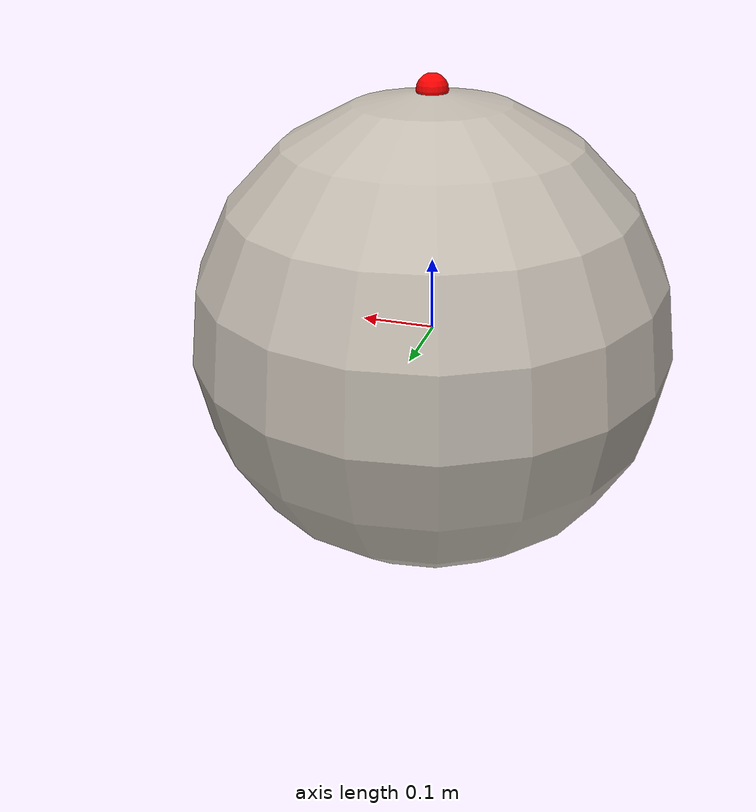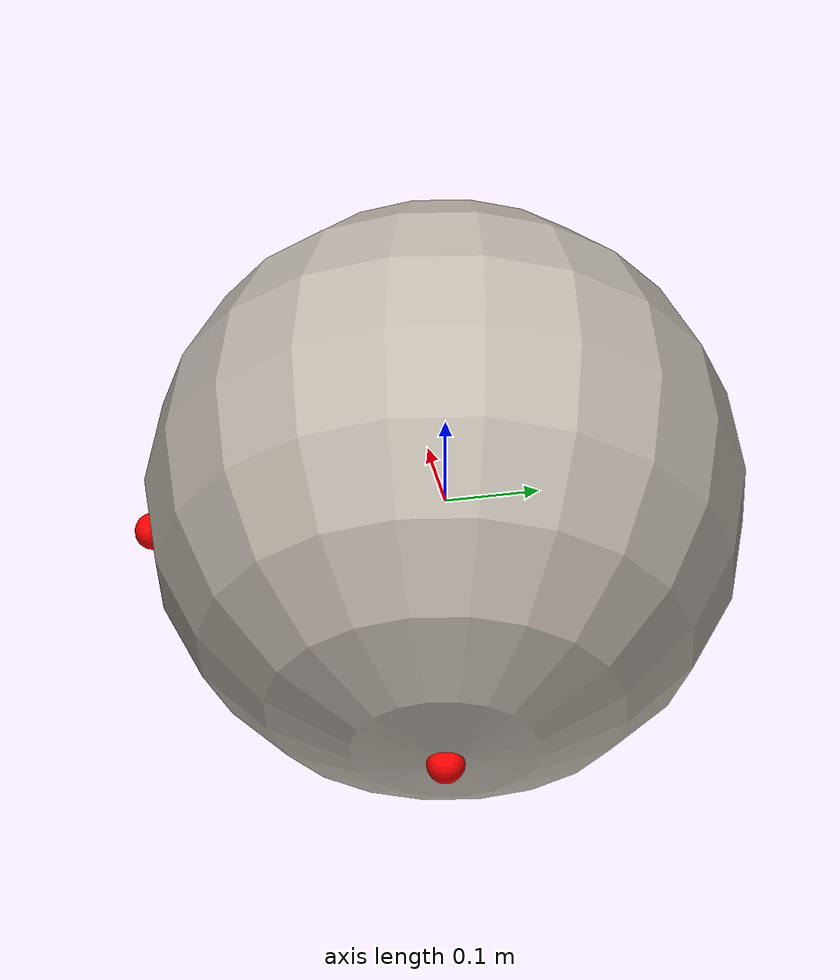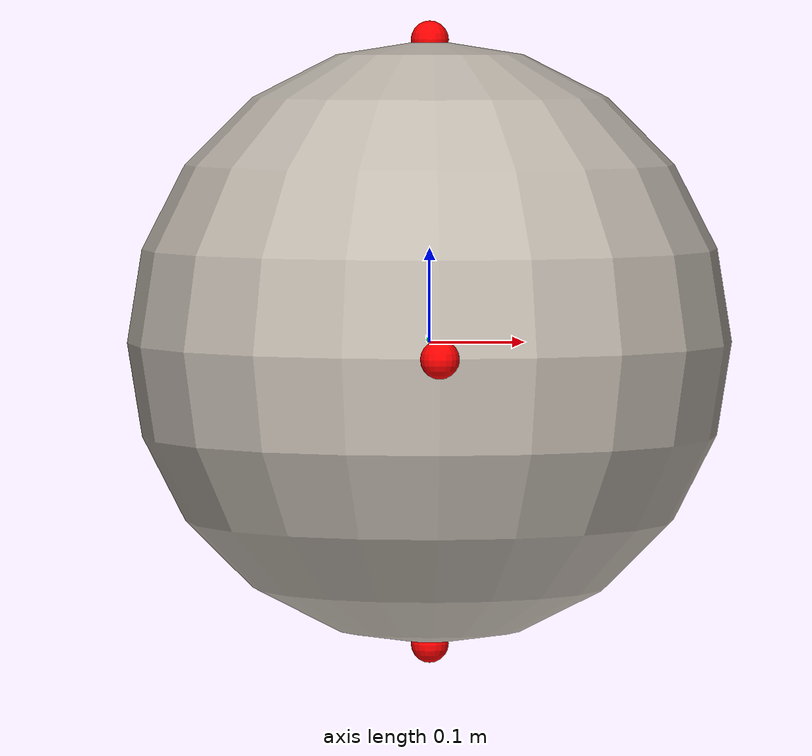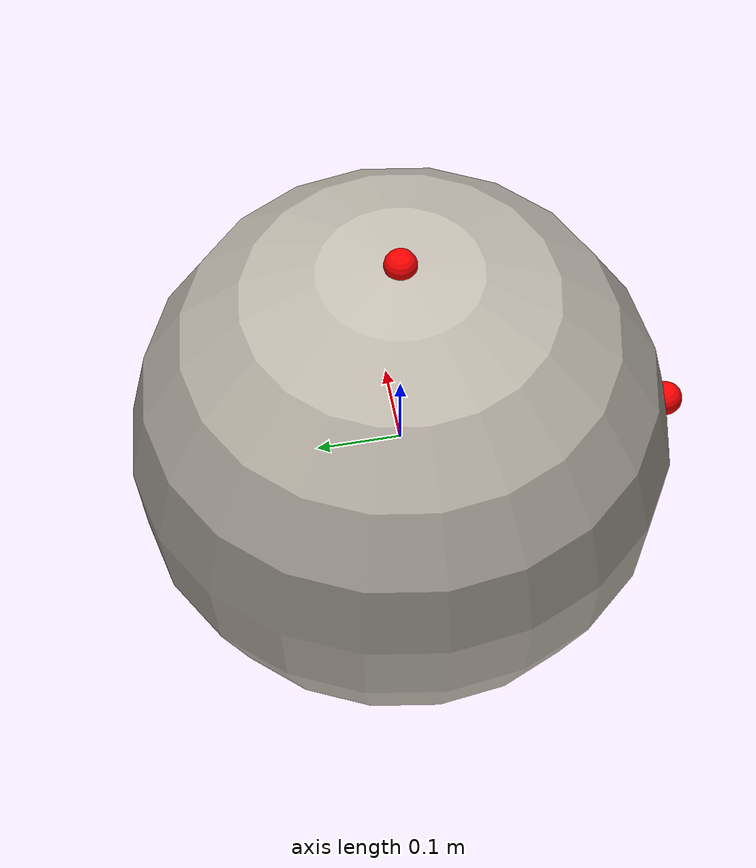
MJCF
<mujoco model="ball">
    <compiler angle="radian"/>

    <default>
        <geom contype="1" conaffinity="1" friction="0.8 0.8 0.8" />
    </default>

    <asset>
        <texture name="ball_texture" type="2d" file="/home/elijah/Documents/projects/hdmi/active-adaptation/active_adaptation/assets_mjcf/objects/ball/texture.png" />
        <material name="ball_mat" texture="ball_texture" />
        <material name="red_mat" rgba="1 0 0 1"/>
    </asset>

    <worldbody>
        <body name="ball" pos="0 0 0" quat="0 0 0 1">
            <freejoint name="ball_root"/>

            <geom type="sphere" size="0.32" pos="0 0 0" material="ball_mat" mass="8" friction="0.5"/>
            <geom type="sphere" size="0.02" pos="0 0 0.32" material="red_mat" contype="0" conaffinity="0" />
            <geom type="sphere" size="0.02" pos="0 0 -0.32" material="red_mat" contype="0" conaffinity="0" />
            <geom type="sphere" size="0.02" pos="0 0.32 0" material="red_mat" contype="0" conaffinity="0" />
        </body>
    </worldbody>

    <sensor>
        <framepos name="ball_pos" objtype="xbody" objname="ball" />
        <framequat name="ball_quat" objtype="xbody" objname="ball" />
    </sensor>

</mujoco>
